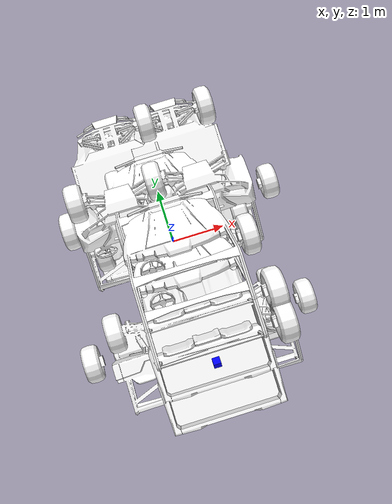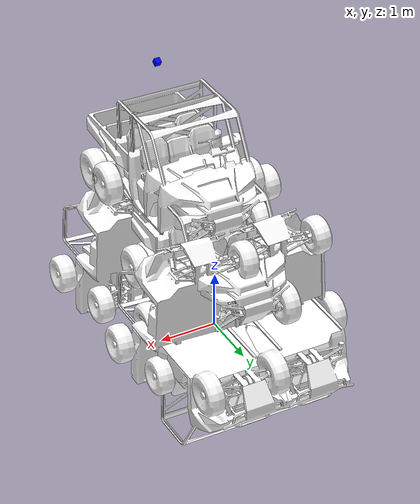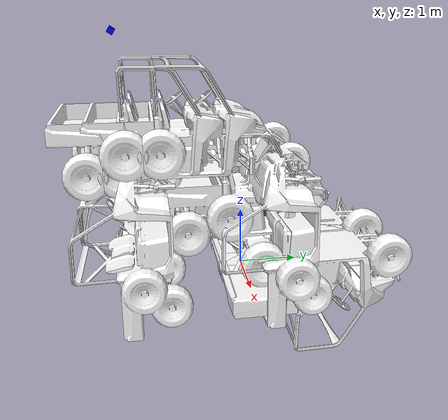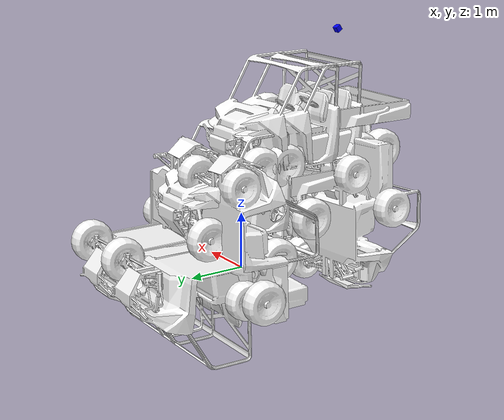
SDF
<sdf version="1.6">
 <world name="default">
  <physics name="1ms" type="ignored">
   <max_step_size>0.001</max_step_size>
   <real_time_factor>1.0</real_time_factor>
  </physics>
  <plugin filename="gz-sim-physics-system" name="gz::sim::systems::Physics"/>
  <plugin filename="gz-sim-user-commands-system" name="gz::sim::systems::UserCommands"/>
  <plugin filename="gz-sim-scene-broadcaster-system" name="gz::sim::systems::SceneBroadcaster"/>
  <plugin filename="gz-sim-imu-system" name="gz::sim::systems::Imu"/>
  <plugin filename="gz-sim-sensors-system" name="gz::sim::systems::Sensors">
   <render_engine>ogre2</render_engine>
  </plugin>
  <include><uri>model://sun</uri></include>
  <include><pose degrees="true">0 0 0.55 0 0 90</pose><uri>model://rover</uri></include>
  <model name="camera1">
   <pose>0 -2 4 0 0.575 1.575</pose>
   <link name="link">
    <inertial>
     <mass>0.1</mass>
     <inertia>
      <ixx>0.185415</ixx>
      <ixy>0.0</ixy>
      <ixz>0.0</ixz>
      <iyy>0.185415</iyy>
      <iyz>0.0</iyz>
      <izz>0.266665</izz>
     </inertia>
    </inertial>
    <collision name="collision"><geometry><box><size>0.1 0.1 0.1</size></box></geometry></collision>
    <visual name="visual">
     <geometry><box><size>0.1 0.1 0.1</size></box></geometry>
     <material><ambient>0 0 1 1</ambient><diffuse>0 0 1 1</diffuse><specular>1 1 1 1</specular></material>
    </visual>
    <sensor name="camera" type="camera">
     <camera>
      <horizontal_fov>2.0</horizontal_fov>
      <image><width>800</width><height>600</height></image>
      <clip><near>0.1</near><far>100</far></clip>
     </camera>
     <update_rate>10</update_rate>
     <topic>camera</topic>
    </sensor>
   </link>
  </model>
  <joint name="camera_joint" type="fixed"><parent>rover::base_link</parent><child>camera1::link</child></joint>
 </world>
</sdf>

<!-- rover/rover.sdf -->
<sdf version="1.5">
  <model name="rover">
    <static>false</static>
    <link name="base_link">
      <inertial>
        <!-- subtracted wheel weights from dry weight of 771 kg -->
        <!-- http://www.polaris.com/en-us/ranger-utv/side-by-sides/ranger-ev/specifications -->
        <mass>720.0</mass>
        <inertia>
          <ixx>140</ixx>
          <ixy>0.0</ixy>
          <iyy>550</iyy>
          <ixz>0.0</ixz>
          <iyz>0.0</iyz>
          <izz>550</izz>
        </inertia>
        <!-- chassis c.o.g. near lateral/longitudinal center, height of 0.4 m -->
        <pose>0.1 0 0.4 0 0 0</pose>
      </inertial>
      <visual name="visual">
        <pose>0 0 0 0 0 -1.570796</pose>
        <geometry>
          <mesh>
            <uri>model://rover/meshes/polaris.dae</uri>
            <submesh>
              <name>Body</name>
              <center>false</center>
            </submesh>
          </mesh>
        </geometry>
        <material>
         <pbr>
            <metal>
              <albedo_map>materials/textures/RangerXP900_Diffuse.png</albedo_map>
            </metal>
          </pbr>
          <diffuse>1 1 1 1</diffuse>
        </material>
      </visual>
      <collision name="base_link_bottom">
        <pose>0.2 0.0 0.335 0 0 0</pose>
        <geometry>
          <box>
            <size>1.34 1.65746 0.06</size>
          </box>
        </geometry>
      </collision>
      <collision name="cargo_bottom">
        <pose>-1.0 0.0 0.921 0.0 0.0 0.0</pose>
        <geometry>
          <box>
            <size>1.04609 1.6998 0.01</size>
          </box>
        </geometry>
      </collision>
      <collision name="cargo_front">
        <pose>-0.495 0.0 1.06 0.0 0.0 0.0</pose>
        <geometry>
          <box>
            <size>0.05 1.69982 0.27</size>
          </box>
        </geometry>
      </collision>
      <collision name="cargo_back">
        <pose>-1.465 0.0 1.06 0.0 0.0 0.0</pose>
        <geometry>
          <box>
            <size>0.05 1.69982 0.27</size>
          </box>
        </geometry>
      </collision>
      <collision name="cargo_left">
        <pose>-0.97 0.82491 1.06 0.0 0.0 0.0</pose>
        <geometry>
          <box>
            <size>1.04609 0.05 0.27</size>
          </box>
        </geometry>
      </collision>
      <collision name="cargo_right">
        <pose>-0.97 -0.82491 1.06 0.0 0.0 0.0</pose>
        <geometry>
          <box>
            <size>1.04609 0.05 0.27</size>
          </box>
        </geometry>
      </collision>
      <collision name="seat">
        <pose>0.0 0.0 0.62 0 0 0</pose>
        <geometry>
          <box>
            <size>0.52167 1.37206 0.53369</size>
          </box>
        </geometry>
        <surface>
          <contact>
            <ode>
              <min_depth>0.01</min_depth>
            </ode>
          </contact>
        </surface>
      </collision>
      <collision name="mud_seat">
        <pose>0.0 0.0 0.86 0 0 0</pose>
        <geometry>
          <box>
            <size>0.52167 1.30 0.1</size>
          </box>
        </geometry>
        <surface>
          <contact>
            <collide_without_contact>true</collide_without_contact>
          </contact>
        </surface>
      </collision>
      <sensor name="seat_contact" type="contact">
        <always_on>true</always_on>
        <update_rate>1000</update_rate>
        <contact>
          <collision>mud_seat</collision>
        </contact>
      </sensor>
      <collision name="seat_back">
        <pose>-0.26 0.0 1.125 0.0 -0.2 0.0</pose>
        <geometry>
          <box>
            <size>0.06 1.37206 0.6</size>
          </box>
        </geometry>
      </collision>
      <collision name="engine">
        <pose>1.12 0.0 0.7 0.0 0.0 0.0</pose>
        <geometry>
          <box>
            <size>0.58 1.3 0.8</size>
          </box>
        </geometry>
      </collision>
      <collision name="rollcage_top_left">
        <pose>-0.02 0.76 1.936 0 1.60 0</pose>
        <geometry>
          <cylinder>
            <radius>0.03</radius>
            <length>0.68</length>
          </cylinder>
        </geometry>
      </collision>
      <collision name="rollcage_top_right">
        <pose>-0.02 -0.76 1.936 0 1.60 0</pose>
        <geometry>
          <cylinder>
            <radius>0.03</radius>
            <length>0.68</length>
          </cylinder>
        </geometry>
      </collision>
      <collision name="rollcage_top_front">
        <pose>0.315 0.0 1.93 0 -1.0 0</pose>
        <geometry>
          <box>
            <size>0.01299 1.54 0.10226</size>
          </box>
        </geometry>
      </collision>
      <collision name="rollcage_top_back">
        <pose>-0.410 0.0 1.88 0 0 0</pose>
        <geometry>
          <box>
            <size>0.01299 1.54 0.10226</size>
          </box>
        </geometry>
      </collision>
      <collision name="rollcage_front_left">
        <pose>0.602 0.755 1.45 0 -0.54 0</pose>
        <geometry>
          <cylinder>
            <radius>0.03</radius>
            <length>1.15</length>
          </cylinder>
        </geometry>
      </collision>
      <collision name="rollcage_front_right">
        <pose>0.602 -0.755 1.45 0 -0.54 0</pose>
        <geometry>
          <cylinder>
            <radius>0.03</radius>
            <length>1.15</length>
          </cylinder>
        </geometry>
      </collision>
      <collision name="rollcage_back_left">
        <pose>-0.4 0.755 1.45 0 0 0</pose>
        <geometry>
          <cylinder>
            <radius>0.03</radius>
            <length>1.00</length>
          </cylinder>
        </geometry>
      </collision>
      <collision name="rollcage_back_right">
        <pose>-0.4 -0.755 1.45 0 0 0</pose>
        <geometry>
          <cylinder>
            <radius>0.03</radius>
            <length>1.00</length>
          </cylinder>
        </geometry>
      </collision>
      <collision name="rollcage_X_1">
        <pose>-0.411 0.04 1.445 0.397 0 0</pose>
        <geometry>
          <box>
            <size>0.01392 1.557245 0.078</size>
          </box>
        </geometry>
      </collision>
      <collision name="rollcage_X_2">
        <pose>-0.40 -0.04 1.445 -0.397 0 0</pose>
        <geometry>
          <box>
            <size>0.01392 1.557245 0.078</size>
          </box>
        </geometry>
      </collision>
      <collision name="central_hump1_collision">
        <pose>0.55 -0.1 0.4 0 0 0</pose>
        <geometry>
          <box>
            <size>0.6 0.15 0.1</size>
          </box>
        </geometry>
      </collision>
      <collision name="central_hump2_collision">
        <pose>0.7 -0.05 0.45 0 -0.5 0</pose>
        <geometry>
          <box>
            <size>0.20 0.05 0.1</size>
          </box>
        </geometry>
      </collision>
      <collision name="central_hump3_collision">
        <pose>0.798 -0.125 0.478 0 -0.8 0</pose>
        <geometry>
          <box>
            <size>0.129 0.1 0.05</size>
          </box>
        </geometry>
      </collision>
      <collision name="central_hump4_collision">
        <pose>0.8135 -0.05 0.45 0 0 0</pose>
        <geometry>
          <box>
            <size>0.10 0.05 0.1835</size>
          </box>
        </geometry>
      </collision>
      <collision name="central_hump5_collision">
        <pose>0.84 -0.125 0.45 0 0 0</pose>
        <geometry>
          <box>
            <size>0.03 0.1 0.1835</size>
          </box>
        </geometry>
      </collision>
      <collision name="central_hump6_collision">
        <pose>0.82 -0.125 0.475 0 0 0</pose>
        <geometry>
          <box>
            <size>0.03 0.1 0.05</size>
          </box>
        </geometry>
      </collision>
      <visual name="cargo_visual">
        <pose>-1.0 0 1.03230 0 0 -1.5707</pose>
        <geometry>
          <mesh>
            <uri>model://rover/meshes/polaris.dae</uri>
            <submesh>
              <name>Bed</name>
              <center>true</center>
            </submesh>
          </mesh>
        </geometry>
        <material>
          <pbr>
            <metal>
              <albedo_map>materials/textures/RangerXP900_Diffuse.png</albedo_map>
            </metal>
          </pbr>
          <diffuse>1 1 1 1</diffuse>
        </material>
      </visual>
      <visual name="tailgate_visual">
        <pose>-1.492 0 1.03 0 0 -1.5707</pose>
        <geometry>
          <mesh>
            <uri>model://rover/meshes/polaris.dae</uri>
            <submesh>
              <name>Tail_Gate</name>
              <center>true</center>
            </submesh>
          </mesh>
        </geometry>
        <material>
          <pbr>
            <metal>
              <albedo_map>materials/textures/RangerXP900_Diffuse.png</albedo_map>
            </metal>
          </pbr>
          <diffuse>1 1 1 1</diffuse>
        </material>
      </visual>
      <visual name="front_left_brake_visual">
        <pose>1.12 -0.57488 0.35516 3.1415 0 1.5707</pose>
        <geometry>
          <mesh>
            <uri>model://rover/meshes/polaris.dae</uri>
            <submesh>
              <name>Brake_Front_Left</name>
              <center>true</center>
            </submesh>
          </mesh>
        </geometry>
        <material>
         <pbr>
            <metal>
              <albedo_map>materials/textures/RangerXP900_Diffuse.png</albedo_map>
            </metal>
          </pbr>
          <diffuse>1 1 1 1</diffuse>
        </material>
      </visual>
      <visual name="front_right_brake_visual">
        <pose>1.12 0.57488 0.35516 3.1415 0 1.5707</pose>
        <geometry>
          <mesh>
            <uri>model://rover/meshes/polaris.dae</uri>
            <submesh>
              <name>Brake_Front_Right</name>
              <center>true</center>
            </submesh>
          </mesh>
        </geometry>
        <material>
         <pbr>
            <metal>
              <albedo_map>materials/textures/RangerXP900_Diffuse.png</albedo_map>
            </metal>
          </pbr>
          <diffuse>1 1 1 1</diffuse>
        </material>
      </visual>
      <visual name="central_hump1">
        <pose>0.55 -0.1 0.4 0 0 0</pose>
        <geometry>
          <box>
            <size>0.6 0.15 0.1</size>
          </box>
        </geometry>
        <material>
          <script>
            <uri>file://media/materials/scripts/gazebo.material</uri>
            <name>Gazebo/DarkGrey</name>
          </script>
        </material>
      </visual>
      <visual name="central_hump2">
        <pose>0.7 -0.05 0.45 0 -0.5 0</pose>
        <geometry>
          <box>
            <size>0.20 0.05 0.1</size>
          </box>
        </geometry>
        <material>
          <script>
            <uri>file://media/materials/scripts/gazebo.material</uri>
            <name>Gazebo/DarkGrey</name>
          </script>
        </material>
      </visual>
      <visual name="central_hump3">
        <pose>0.798 -0.125 0.478 0 -0.8 0</pose>
        <geometry>
          <box>
            <size>0.129 0.1 0.05</size>
          </box>
        </geometry>
        <material>
          <script>
            <uri>file://media/materials/scripts/gazebo.material</uri>
            <name>Gazebo/DarkGrey</name>
          </script>
        </material>
      </visual>
      <visual name="central_hump4">
        <pose>0.8135 -0.05 0.45 0 0 0</pose>
        <geometry>
          <box>
            <size>0.10 0.05 0.1835</size>
          </box>
        </geometry>
        <material>
          <script>
            <uri>file://media/materials/scripts/gazebo.material</uri>
            <name>Gazebo/DarkGrey</name>
          </script>
        </material>
      </visual>
      <visual name="central_hump5">
        <pose>0.84 -0.125 0.45 0 0 0</pose>
        <geometry>
          <box>
            <size>0.03 0.1 0.1835</size>
          </box>
        </geometry>
        <material>
          <script>
            <uri>file://media/materials/scripts/gazebo.material</uri>
            <name>Gazebo/DarkGrey</name>
          </script>
        </material>
      </visual>
      <visual name="central_hump6">
        <pose>0.82 -0.125 0.475 0 0 0</pose>
        <geometry>
          <box>
            <size>0.03 0.1 0.05</size>
          </box>
        </geometry>
        <material>
          <script>
            <uri>file://media/materials/scripts/gazebo.material</uri>
            <name>Gazebo/DarkGrey</name>
          </script>
        </material>
      </visual>
    </link>
    <link name='rover/imu_link'>
      <pose>0 0 0 0 0 0</pose>
      <inertial>
        <pose>0 0 0 0 0 0</pose>
        <mass>0.015</mass>
        <inertia>
          <ixx>1e-05</ixx>
          <ixy>0</ixy>
          <ixz>0</ixz>
          <iyy>1e-05</iyy>
          <iyz>0</iyz>
          <izz>1e-05</izz>
        </inertia>
      </inertial>
       <sensor name="imu_sensor" type="imu">
        <pose degrees="true">0 0 0 180 0 0</pose>
        <always_on>1</always_on>
        <update_rate>100</update_rate>
      </sensor>
       <!-- gps -->
    </link>
    <joint name='rover/imu_joint' type='revolute'>
      <child>rover/imu_link</child>
      <parent>base_link</parent>
      <axis>
        <xyz>1 0 0</xyz>
        <limit>
          <lower>0</lower>
          <upper>0</upper>
          <effort>0</effort>
          <velocity>0</velocity>
        </limit>
        <dynamics>
          <spring_reference>0</spring_reference>
          <spring_stiffness>0</spring_stiffness>
        </dynamics>
        <use_parent_model_frame>1</use_parent_model_frame>
      </axis>
    </joint>
    <link name="front_left_wheel">
      <pose>1.20223 0.71562 0.34697 -1.52 0.0 0.0</pose>
      <inertial>
        <mass>12</mass>
        <!-- estimated from http://www.rzrforums.net/wheels-tires/1729-tire-wheel-weights-most-sizes.html -->
        <inertia>
          <ixx>0.5</ixx>
          <ixy>0.0</ixy>
          <iyy>0.5</iyy>
          <ixz>0.0</ixz>
          <iyz>0.0</iyz>
          <izz>1.0</izz>
        </inertia>
      </inertial>
      <collision name="collision">
        <geometry>
          <cylinder>
            <radius>0.3175</radius>
            <length>0.2794</length>
          </cylinder>
        </geometry>
        <max_contacts>1</max_contacts>
        <surface>
          <friction>
            <ode>
              <mu>1.0</mu>
              <mu2>1.0</mu2>
              <fdir1>0 0 1</fdir1>
              <slip1>0.0</slip1>
              <slip2>0.0</slip2>
            </ode>
          </friction>
          <contact>
            <ode>
              <min_depth>0.005</min_depth>
              <kp>1e8</kp>
            </ode>
          </contact>
        </surface>
      </collision>
      <visual name="tire_visual">
        <pose>0 0 0 3.14159 1.570796 0</pose>
        <geometry>
          <mesh>
            <uri>model://rover/meshes/polaris.dae</uri>
            <scale>1.003700111 0.886200464 0.886200464</scale>
            <submesh>
              <name>Wheel_Front_Left</name>
              <center>true</center>
            </submesh>
          </mesh>
        </geometry>
        <material>
          <pbr>
            <metal>
              <albedo_map>materials/textures/RangerXP900_Diffuse.png</albedo_map>
            </metal>
          </pbr>
          <diffuse>1 1 1 1</diffuse>
        </material>
      </visual>
    </link>
    <link name="front_right_wheel">
      <pose>1.20223 -0.71562 0.34697 1.52 0.0 0.0</pose>
      <inertial>
        <mass>12</mass>
        <!-- estimated from http://www.rzrforums.net/wheels-tires/1729-tire-wheel-weights-most-sizes.html -->
        <inertia>
          <ixx>0.5</ixx>
          <ixy>0.0</ixy>
          <iyy>0.5</iyy>
          <ixz>0.0</ixz>
          <iyz>0.0</iyz>
          <izz>1.0</izz>
        </inertia>
      </inertial>
      <collision name="collision">
        <geometry>
          <cylinder>
            <radius>0.3175</radius>
            <length>0.2794</length>
          </cylinder>
        </geometry>
        <max_contacts>1</max_contacts>
        <surface>
          <friction>
            <ode>
              <mu>1.0</mu>
              <mu2>1.0</mu2>
              <fdir1>0 0 1</fdir1>
              <slip1>0.0</slip1>
              <slip2>0.0</slip2>
            </ode>
          </friction>
          <contact>
            <ode>
              <min_depth>0.005</min_depth>
              <kp>1e8</kp>
            </ode>
          </contact>
        </surface>
      </collision>
      <visual name="visual">
        <pose>0 0 0 0 -1.570796 0</pose>
        <geometry>
          <mesh>
            <uri>model://rover/meshes/polaris.dae</uri>
            <scale>1.003700111 0.886200464 0.886200464</scale>
            <submesh>
              <name>Wheel_Front_Right</name>
              <center>true</center>
            </submesh>
          </mesh>
        </geometry>
        <material>
         <pbr>
            <metal>
              <albedo_map>materials/textures/RangerXP900_Diffuse.png</albedo_map>
            </metal>
          </pbr>
          <diffuse>1 1 1 1</diffuse>
        </material>
      </visual>
    </link>
    <link name="rear_left_wheel">
      <pose>-0.99377 0.71562 0.34697 -1.52 0.0 0.0</pose>
      <inertial>
        <mass>12</mass>
        <!-- estimated from http://www.rzrforums.net/wheels-tires/1729-tire-wheel-weights-most-sizes.html -->
        <inertia>
          <ixx>0.5</ixx>
          <ixy>0.0</ixy>
          <iyy>0.5</iyy>
          <ixz>0.0</ixz>
          <iyz>0.0</iyz>
          <izz>1.0</izz>
        </inertia>
      </inertial>
      <collision name="collision">
        <geometry>
          <cylinder>
            <radius>0.3175</radius>
            <length>0.2794</length>
          </cylinder>
        </geometry>
        <max_contacts>1</max_contacts>
        <surface>
          <friction>
            <ode>
              <mu>1.0</mu>
              <mu2>1.0</mu2>
              <fdir1>0 0 1</fdir1>
              <slip1>0.0</slip1>
              <slip2>0.0</slip2>
            </ode>
          </friction>
          <contact>
            <ode>
              <min_depth>0.005</min_depth>
              <kp>1e8</kp>
            </ode>
          </contact>
        </surface>
      </collision>
      <visual name="visual">
        <pose>0 0 0 0 -1.570796 0</pose>
        <geometry>
          <mesh>
            <uri>model://rover/meshes/polaris.dae</uri>
            <scale>1.003700111 0.886200464 0.886200464</scale>
            <submesh>
              <name>Wheels_Rear_Left</name>
              <center>true</center>
            </submesh>
          </mesh>
        </geometry>
        <material>
         <pbr>
            <metal>
              <albedo_map>materials/textures/RangerXP900_Diffuse.png</albedo_map>
            </metal>
          </pbr>
          <diffuse>1 1 1 1</diffuse>
        </material>
      </visual>
    </link>
    <link name="rear_right_wheel">
      <pose>-0.99377 -0.71562 0.34697 1.52 0.0 0.0</pose>
      <inertial>
        <mass>12</mass>
        <!-- estimated from http://www.rzrforums.net/wheels-tires/1729-tire-wheel-weights-most-sizes.html -->
        <inertia>
          <ixx>0.5</ixx>
          <ixy>0.0</ixy>
          <iyy>0.5</iyy>
          <ixz>0.0</ixz>
          <iyz>0.0</iyz>
          <izz>1.0</izz>
        </inertia>
      </inertial>
      <collision name="collision">
        <geometry>
          <cylinder>
            <radius>0.3175</radius>
            <length>0.2794</length>
          </cylinder>
        </geometry>
        <max_contacts>1</max_contacts>
        <surface>
          <friction>
            <ode>
              <mu>1.0</mu>
              <mu2>1.0</mu2>
              <fdir1>0 0 1</fdir1>
              <slip1>0.0</slip1>
              <slip2>0.0</slip2>
            </ode>
          </friction>
          <contact>
            <ode>
              <min_depth>0.005</min_depth>
              <kp>1e8</kp>
            </ode>
          </contact>
        </surface>
      </collision>
      <visual name="visual">
        <pose>0 0 0 0 -1.570796 0</pose>
        <geometry>
          <mesh>
            <uri>model://rover/meshes/polaris.dae</uri>
            <scale>1.003700111 0.886200464 0.886200464</scale>
            <submesh>
              <name>Wheels_Rear_Right</name>
              <center>true</center>
            </submesh>
          </mesh>
        </geometry>
        <material>
         <pbr>
            <metal>
              <albedo_map>materials/textures/RangerXP900_Diffuse.png</albedo_map>
            </metal>
          </pbr>
          <diffuse>1 1 1 1</diffuse>
        </material>
      </visual>
    </link>
    <link name="front_right_wheel_steering_block">
      <pose>1.20223 -0.5 0.35515 1.570796 0.0 0.0</pose>
      <inertial>
        <mass>1</mass>
        <inertia>
          <ixx>0.01</ixx>
          <ixy>0.0</ixy>
          <iyy>0.01</iyy>
          <ixz>0.0</ixz>
          <iyz>0.0</iyz>
          <izz>0.01</izz>
        </inertia>
      </inertial>
      <collision name="collision">
        <geometry>
          <cylinder>
            <radius>0.05</radius>
            <length>0.01</length>
          </cylinder>
        </geometry>
      </collision>
    </link>
    <link name="front_left_wheel_steering_block">
      <pose>1.20223 0.5 0.35515 1.570796 0.0 0.0</pose>
      <inertial>
        <mass>1</mass>
        <inertia>
          <ixx>0.01</ixx>
          <ixy>0.0</ixy>
          <iyy>0.01</iyy>
          <ixz>0.0</ixz>
          <iyz>0.0</iyz>
          <izz>0.01</izz>
        </inertia>
      </inertial>
      <collision name="collision">
        <geometry>
          <cylinder>
            <radius>0.05</radius>
            <length>0.01</length>
          </cylinder>
        </geometry>
      </collision>
    </link>
    <joint type="revolute" name="front_left_steering_joint">
      <child>front_left_wheel_steering_block</child>
      <parent>base_link</parent>
      <axis>
        <xyz>0 0 1</xyz>
        <limit>
          <lower>-0.7727</lower>
          <upper>0.7727</upper>
        </limit>
        <dynamics>
          <damping>50.0</damping>
        </dynamics>
        <use_parent_model_frame>true</use_parent_model_frame>
      </axis>
      <physics>
        <ode>
          <cfm_damping>1</cfm_damping>
          <limit>
            <cfm>0.000000</cfm>
            <erp>0.900000</erp>
          </limit>
        </ode>
      </physics>
    </joint>
    <joint type="revolute" name="front_left_wheel_joint">
      <child>front_left_wheel</child>
      <parent>front_left_wheel_steering_block</parent>
      <axis>
        <xyz>0 1 0.05</xyz>
        <use_parent_model_frame>true</use_parent_model_frame>
      </axis>
    </joint>
    <joint type="revolute" name="front_right_steering_joint">
      <child>front_right_wheel_steering_block</child>
      <parent>base_link</parent>
      <axis>
        <xyz>0 0 1</xyz>
        <limit>
          <lower>-0.7727</lower>
          <upper>0.7727</upper>
        </limit>
        <dynamics>
          <damping>50.0</damping>
        </dynamics>
        <use_parent_model_frame>true</use_parent_model_frame>
      </axis>
      <physics>
        <ode>
          <cfm_damping>1</cfm_damping>
          <limit>
            <cfm>0.000000</cfm>
            <erp>0.900000</erp>
          </limit>
        </ode>
      </physics>
    </joint>
    <joint type="revolute" name="front_right_wheel_joint">
      <child>front_right_wheel</child>
      <parent>front_right_wheel_steering_block</parent>
      <axis>
        <xyz>0 1 -0.05</xyz>
        <use_parent_model_frame>true</use_parent_model_frame>
      </axis>
    </joint>
    <joint type="revolute" name="rear_left_wheel_joint">
      <child>rear_left_wheel</child>
      <parent>base_link</parent>
      <axis>
        <xyz>0 1 0.05</xyz>
        <use_parent_model_frame>true</use_parent_model_frame>
      </axis>
    </joint>
    <joint type="revolute" name="rear_right_wheel_joint">
      <pose>0.0 0.0 -0.1 0 0 0</pose>
      <child>rear_right_wheel</child>
      <parent>base_link</parent>
      <axis>
        <xyz>0 1 -0.05</xyz>
        <use_parent_model_frame>true</use_parent_model_frame>
      </axis>
    </joint>

    <!-- plugins -->

    <plugin
  filename="gz-sim-joint-position-controller-system"
  name="gz::sim::systems::JointPositionController">
  <joint_name>front_right_steering_joint</joint_name>
  <p_gain>500</p_gain>
  <i_gain>0.1</i_gain>
  <d_gain>0.01</d_gain>
  <i_max>1</i_max>
  <i_min>-1</i_min>
  <cmd_max>1000</cmd_max>
  <cmd_min>-1000</cmd_min>
</plugin>

    <plugin
  filename="gz-sim-joint-position-controller-system"
  name="gz::sim::systems::JointPositionController">
  <joint_name>front_left_steering_joint</joint_name>
  <p_gain>500</p_gain>
  <i_gain>0.1</i_gain>
  <d_gain>0.01</d_gain>
  <i_max>1</i_max>
  <i_min>-1</i_min>
  <cmd_max>1000</cmd_max>
  <cmd_min>-1000</cmd_min>
</plugin>

    <plugin name="gz::sim::systems::JointStatePublisher"
      filename="gz-sim-joint-state-publisher-system">
    </plugin>

    <plugin name="gz::sim::systems::OdometryPublisher"
      filename="gz-sim-odometry-publisher-system">
      <odom_frame>odom</odom_frame>
      <robot_base_frame>base_link</robot_base_frame>
      <dimensions>2</dimensions>
    </plugin>

    <plugin filename="gz-sim-apply-joint-force-system"
      name="gz::sim::systems::ApplyJointForce">
      <joint_name>motor_0</joint_name>
      </plugin>
    <plugin filename="gz-sim-apply-joint-force-system"
      name="gz::sim::systems::ApplyJointForce">
      <joint_name>motor_1</joint_name>
      </plugin>
    <plugin filename="gz-sim-apply-joint-force-system"
      name="gz::sim::systems::ApplyJointForce">
      <joint_name>motor_2</joint_name>
    </plugin>
    <plugin
      filename="gz-sim-apply-joint-force-system"
      name="gz::sim::systems::ApplyJointForce">
      <joint_name>motor_3</joint_name>
    </plugin>

     <!-- ardupilot plugin -->
    <plugin name="ArduPilotPlugin"
      filename="ArduPilotPlugin">
      <fdm_addr>127.0.0.1</fdm_addr>
      <fdm_port_in>9002</fdm_port_in>
      <connectionTimeoutMaxCount>5</connectionTimeoutMaxCount>
      <lock_step>1</lock_step>
      <gazeboXYZToNED degrees="true">0 0 0 180 0 90</gazeboXYZToNED>
      <modelXYZToAirplaneXForwardZDown degrees="true">0 0 0 180 0 0</modelXYZToAirplaneXForwardZDown>
      <imuName>rover/imu_link::imu_sensor</imuName>

      <!-- lf_wheel_link -->
      <!--
      incoming control command [0, 1]
      so offset it by 0 to get [0, 1]
      and divide max target by 1.
      offset = 0
      multiplier = 838 max rpm / 1 = 838
    -->
      <control channel="0">
        <jointName>front_left_steering_joint</jointName>
        <useForce>0</useForce>
        <multiplier>1.575</multiplier>
        <offset>-0.5</offset>
        <servo_min>1000</servo_min>
        <servo_max>2000</servo_max>
        <type>COMMAND</type>
        <cmd_topic>/model/rover/joint/front_left_steering_joint/0/cmd_pos</cmd_topic>
        <p_gain>1</p_gain>
        <i_gain>0</i_gain>
        <d_gain>0</d_gain>
        <i_max>0</i_max>
        <i_min>0</i_min>
        <cmd_max>5</cmd_max>
        <cmd_min>-5</cmd_min>
        <controlVelocitySlowdownSim>0</controlVelocitySlowdownSim>
      </control>

    <control channel="0">
        <jointName>front_right_steering_joint</jointName>
        <useForce>0</useForce>
        <multiplier>1.575</multiplier>
        <offset>-0.5</offset>
        <servo_min>1000</servo_min>
        <servo_max>2000</servo_max>
        <type>COMMAND</type>
        <cmd_topic>/model/rover/joint/front_right_steering_joint/0/cmd_pos</cmd_topic>
        <p_gain>1</p_gain>
        <i_gain>0</i_gain>
        <d_gain>0</d_gain>
        <i_max>0</i_max>
        <i_min>0</i_min>
        <cmd_max>5</cmd_max>
        <cmd_min>-5</cmd_min>
        <controlVelocitySlowdownSim>0</controlVelocitySlowdownSim>
      </control>

      <control channel="2">
        <jointName>rear_left_wheel_joint</jointName>
        <useForce>0</useForce>
        <multiplier>120</multiplier>
        <offset>-0.5</offset>
        <servo_min>1000</servo_min>
        <servo_max>2000</servo_max>
        <type>VELOCITY</type>
        <p_gain>0.2</p_gain>
        <i_gain>0.0</i_gain>
        <d_gain>0.0001</d_gain>
        <i_max>1</i_max>
        <i_min>-1</i_min>
        <cmd_max>1.0</cmd_max>
        <cmd_min>-1.0</cmd_min>
      </control>

      <!-- rb_wheel_link -->
      <control channel="2">
        <jointName>rear_right_wheel_joint</jointName>
        <useForce>0</useForce>
        <multiplier>120</multiplier>
        <offset>-0.5</offset>
        <servo_min>1000</servo_min>
        <servo_max>2000</servo_max>
        <type>VELOCITY</type>
        <p_gain>0.2</p_gain>
        <i_gain>0.0</i_gain>
        <d_gain>0.0001</d_gain>
        <i_max>1</i_max>
        <i_min>-1</i_min>
        <cmd_max>1.0</cmd_max>
        <cmd_min>-1.0</cmd_min>
      </control>

    </plugin>

</model>
</sdf>
